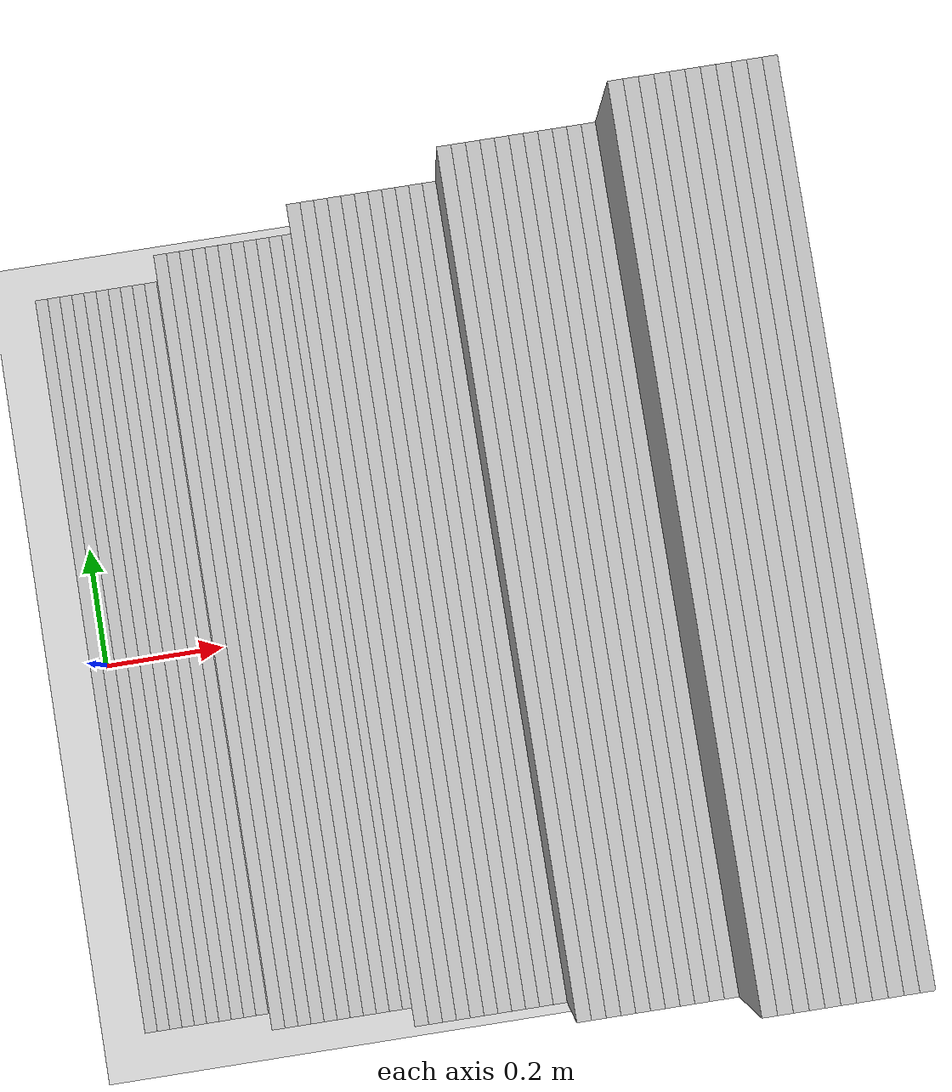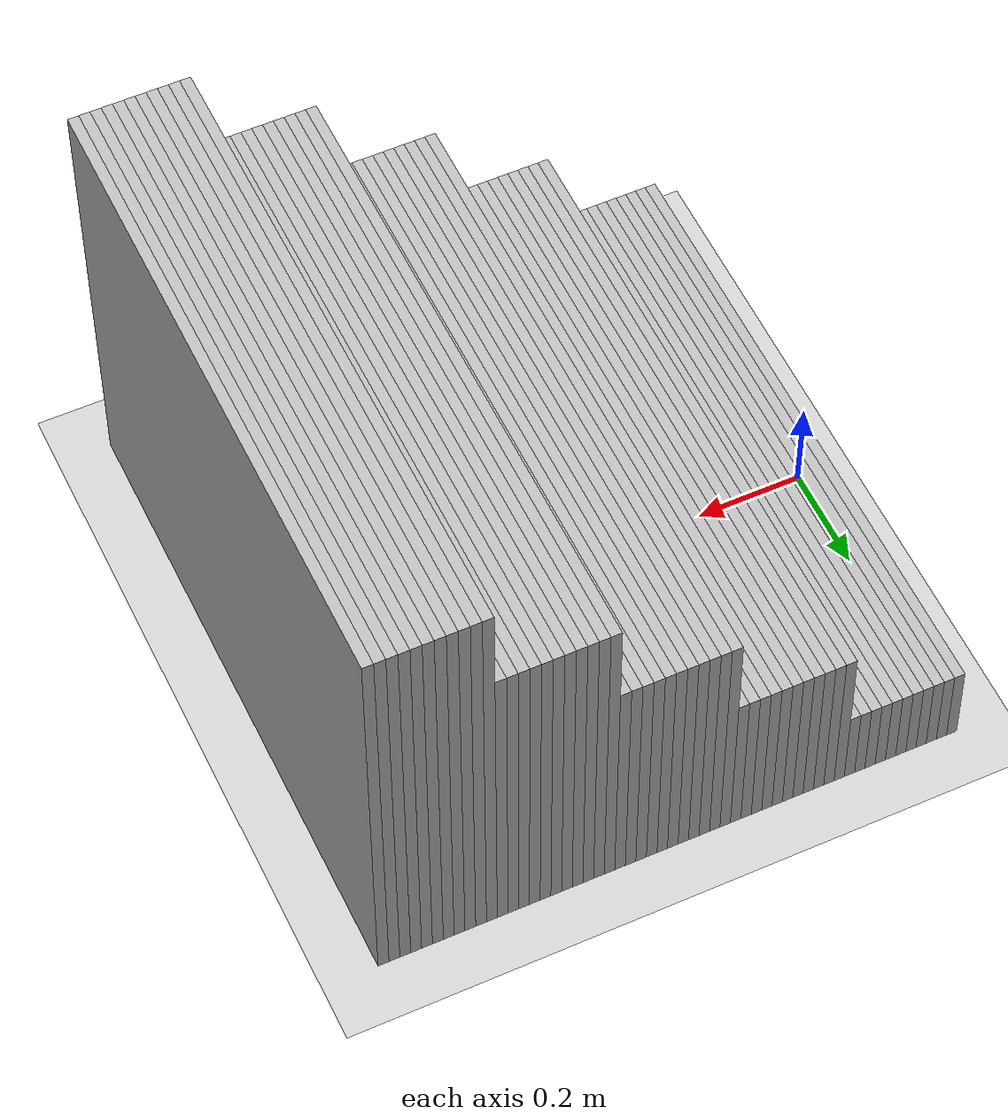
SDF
<?xml version="1.0"?>
<sdf version="1.6">
  <world name="stair_lab">
    <!-- stair_lab_stairs_steep —— 由 stairstudy/fixtures.py 生成（离线候选件，**不被任何在册 launch 引用**）
         场景：踏步深 0.22m 级高 0.18m 共 5 级
         请勿与 worlds/m1_world.world 混用：后者是红线件（各跑 world_before/after.sha 对它取指纹）。 -->
    <include><uri>model://ground_plane</uri></include>
    <include><uri>model://sun</uri></include>
    <model name="stairs_steep">
      <static>1</static>
      <pose>0.000 0.000 0 0 0 0</pose>
        <link name="seg0">
          <pose>0.010 0.000 0.090 0 0 0</pose>
          <collision name="c0"><geometry><box><size>0.02 1.200 0.180</size></box></geometry></collision>
          <visual name="v0"><geometry><box><size>0.02 1.200 0.180</size></box></geometry></visual>
        </link>        <link name="seg1">
          <pose>0.030 0.000 0.090 0 0 0</pose>
          <collision name="c1"><geometry><box><size>0.02 1.200 0.180</size></box></geometry></collision>
          <visual name="v1"><geometry><box><size>0.02 1.200 0.180</size></box></geometry></visual>
        </link>        <link name="seg2">
          <pose>0.050 0.000 0.090 0 0 0</pose>
          <collision name="c2"><geometry><box><size>0.02 1.200 0.180</size></box></geometry></collision>
          <visual name="v2"><geometry><box><size>0.02 1.200 0.180</size></box></geometry></visual>
        </link>        <link name="seg3">
          <pose>0.070 0.000 0.090 0 0 0</pose>
          <collision name="c3"><geometry><box><size>0.02 1.200 0.180</size></box></geometry></collision>
          <visual name="v3"><geometry><box><size>0.02 1.200 0.180</size></box></geometry></visual>
        </link>        <link name="seg4">
          <pose>0.090 0.000 0.090 0 0 0</pose>
          <collision name="c4"><geometry><box><size>0.02 1.200 0.180</size></box></geometry></collision>
          <visual name="v4"><geometry><box><size>0.02 1.200 0.180</size></box></geometry></visual>
        </link>        <link name="seg5">
          <pose>0.110 0.000 0.090 0 0 0</pose>
          <collision name="c5"><geometry><box><size>0.02 1.200 0.180</size></box></geometry></collision>
          <visual name="v5"><geometry><box><size>0.02 1.200 0.180</size></box></geometry></visual>
        </link>        <link name="seg6">
          <pose>0.130 0.000 0.090 0 0 0</pose>
          <collision name="c6"><geometry><box><size>0.02 1.200 0.180</size></box></geometry></collision>
          <visual name="v6"><geometry><box><size>0.02 1.200 0.180</size></box></geometry></visual>
        </link>        <link name="seg7">
          <pose>0.150 0.000 0.090 0 0 0</pose>
          <collision name="c7"><geometry><box><size>0.02 1.200 0.180</size></box></geometry></collision>
          <visual name="v7"><geometry><box><size>0.02 1.200 0.180</size></box></geometry></visual>
        </link>        <link name="seg8">
          <pose>0.170 0.000 0.090 0 0 0</pose>
          <collision name="c8"><geometry><box><size>0.02 1.200 0.180</size></box></geometry></collision>
          <visual name="v8"><geometry><box><size>0.02 1.200 0.180</size></box></geometry></visual>
        </link>        <link name="seg9">
          <pose>0.190 0.000 0.090 0 0 0</pose>
          <collision name="c9"><geometry><box><size>0.02 1.200 0.180</size></box></geometry></collision>
          <visual name="v9"><geometry><box><size>0.02 1.200 0.180</size></box></geometry></visual>
        </link>        <link name="seg10">
          <pose>0.210 0.000 0.090 0 0 0</pose>
          <collision name="c10"><geometry><box><size>0.02 1.200 0.180</size></box></geometry></collision>
          <visual name="v10"><geometry><box><size>0.02 1.200 0.180</size></box></geometry></visual>
        </link>        <link name="seg11">
          <pose>0.230 0.000 0.180 0 0 0</pose>
          <collision name="c11"><geometry><box><size>0.02 1.200 0.360</size></box></geometry></collision>
          <visual name="v11"><geometry><box><size>0.02 1.200 0.360</size></box></geometry></visual>
        </link>        <link name="seg12">
          <pose>0.250 0.000 0.180 0 0 0</pose>
          <collision name="c12"><geometry><box><size>0.02 1.200 0.360</size></box></geometry></collision>
          <visual name="v12"><geometry><box><size>0.02 1.200 0.360</size></box></geometry></visual>
        </link>        <link name="seg13">
          <pose>0.270 0.000 0.180 0 0 0</pose>
          <collision name="c13"><geometry><box><size>0.02 1.200 0.360</size></box></geometry></collision>
          <visual name="v13"><geometry><box><size>0.02 1.200 0.360</size></box></geometry></visual>
        </link>        <link name="seg14">
          <pose>0.290 0.000 0.180 0 0 0</pose>
          <collision name="c14"><geometry><box><size>0.02 1.200 0.360</size></box></geometry></collision>
          <visual name="v14"><geometry><box><size>0.02 1.200 0.360</size></box></geometry></visual>
        </link>        <link name="seg15">
          <pose>0.310 0.000 0.180 0 0 0</pose>
          <collision name="c15"><geometry><box><size>0.02 1.200 0.360</size></box></geometry></collision>
          <visual name="v15"><geometry><box><size>0.02 1.200 0.360</size></box></geometry></visual>
        </link>        <link name="seg16">
          <pose>0.330 0.000 0.180 0 0 0</pose>
          <collision name="c16"><geometry><box><size>0.02 1.200 0.360</size></box></geometry></collision>
          <visual name="v16"><geometry><box><size>0.02 1.200 0.360</size></box></geometry></visual>
        </link>        <link name="seg17">
          <pose>0.350 0.000 0.180 0 0 0</pose>
          <collision name="c17"><geometry><box><size>0.02 1.200 0.360</size></box></geometry></collision>
          <visual name="v17"><geometry><box><size>0.02 1.200 0.360</size></box></geometry></visual>
        </link>        <link name="seg18">
          <pose>0.370 0.000 0.180 0 0 0</pose>
          <collision name="c18"><geometry><box><size>0.02 1.200 0.360</size></box></geometry></collision>
          <visual name="v18"><geometry><box><size>0.02 1.200 0.360</size></box></geometry></visual>
        </link>        <link name="seg19">
          <pose>0.390 0.000 0.180 0 0 0</pose>
          <collision name="c19"><geometry><box><size>0.02 1.200 0.360</size></box></geometry></collision>
          <visual name="v19"><geometry><box><size>0.02 1.200 0.360</size></box></geometry></visual>
        </link>        <link name="seg20">
          <pose>0.410 0.000 0.180 0 0 0</pose>
          <collision name="c20"><geometry><box><size>0.02 1.200 0.360</size></box></geometry></collision>
          <visual name="v20"><geometry><box><size>0.02 1.200 0.360</size></box></geometry></visual>
        </link>        <link name="seg21">
          <pose>0.430 0.000 0.180 0 0 0</pose>
          <collision name="c21"><geometry><box><size>0.02 1.200 0.360</size></box></geometry></collision>
          <visual name="v21"><geometry><box><size>0.02 1.200 0.360</size></box></geometry></visual>
        </link>        <link name="seg22">
          <pose>0.450 0.000 0.270 0 0 0</pose>
          <collision name="c22"><geometry><box><size>0.02 1.200 0.540</size></box></geometry></collision>
          <visual name="v22"><geometry><box><size>0.02 1.200 0.540</size></box></geometry></visual>
        </link>        <link name="seg23">
          <pose>0.470 0.000 0.270 0 0 0</pose>
          <collision name="c23"><geometry><box><size>0.02 1.200 0.540</size></box></geometry></collision>
          <visual name="v23"><geometry><box><size>0.02 1.200 0.540</size></box></geometry></visual>
        </link>        <link name="seg24">
          <pose>0.490 0.000 0.270 0 0 0</pose>
          <collision name="c24"><geometry><box><size>0.02 1.200 0.540</size></box></geometry></collision>
          <visual name="v24"><geometry><box><size>0.02 1.200 0.540</size></box></geometry></visual>
        </link>        <link name="seg25">
          <pose>0.510 0.000 0.270 0 0 0</pose>
          <collision name="c25"><geometry><box><size>0.02 1.200 0.540</size></box></geometry></collision>
          <visual name="v25"><geometry><box><size>0.02 1.200 0.540</size></box></geometry></visual>
        </link>        <link name="seg26">
          <pose>0.530 0.000 0.270 0 0 0</pose>
          <collision name="c26"><geometry><box><size>0.02 1.200 0.540</size></box></geometry></collision>
          <visual name="v26"><geometry><box><size>0.02 1.200 0.540</size></box></geometry></visual>
        </link>        <link name="seg27">
          <pose>0.550 0.000 0.270 0 0 0</pose>
          <collision name="c27"><geometry><box><size>0.02 1.200 0.540</size></box></geometry></collision>
          <visual name="v27"><geometry><box><size>0.02 1.200 0.540</size></box></geometry></visual>
        </link>        <link name="seg28">
          <pose>0.570 0.000 0.270 0 0 0</pose>
          <collision name="c28"><geometry><box><size>0.02 1.200 0.540</size></box></geometry></collision>
          <visual name="v28"><geometry><box><size>0.02 1.200 0.540</size></box></geometry></visual>
        </link>        <link name="seg29">
          <pose>0.590 0.000 0.270 0 0 0</pose>
          <collision name="c29"><geometry><box><size>0.02 1.200 0.540</size></box></geometry></collision>
          <visual name="v29"><geometry><box><size>0.02 1.200 0.540</size></box></geometry></visual>
        </link>        <link name="seg30">
          <pose>0.610 0.000 0.270 0 0 0</pose>
          <collision name="c30"><geometry><box><size>0.02 1.200 0.540</size></box></geometry></collision>
          <visual name="v30"><geometry><box><size>0.02 1.200 0.540</size></box></geometry></visual>
        </link>        <link name="seg31">
          <pose>0.630 0.000 0.270 0 0 0</pose>
          <collision name="c31"><geometry><box><size>0.02 1.200 0.540</size></box></geometry></collision>
          <visual name="v31"><geometry><box><size>0.02 1.200 0.540</size></box></geometry></visual>
        </link>        <link name="seg32">
          <pose>0.650 0.000 0.270 0 0 0</pose>
          <collision name="c32"><geometry><box><size>0.02 1.200 0.540</size></box></geometry></collision>
          <visual name="v32"><geometry><box><size>0.02 1.200 0.540</size></box></geometry></visual>
        </link>        <link name="seg33">
          <pose>0.670 0.000 0.360 0 0 0</pose>
          <collision name="c33"><geometry><box><size>0.02 1.200 0.720</size></box></geometry></collision>
          <visual name="v33"><geometry><box><size>0.02 1.200 0.720</size></box></geometry></visual>
        </link>        <link name="seg34">
          <pose>0.690 0.000 0.360 0 0 0</pose>
          <collision name="c34"><geometry><box><size>0.02 1.200 0.720</size></box></geometry></collision>
          <visual name="v34"><geometry><box><size>0.02 1.200 0.720</size></box></geometry></visual>
        </link>        <link name="seg35">
          <pose>0.710 0.000 0.360 0 0 0</pose>
          <collision name="c35"><geometry><box><size>0.02 1.200 0.720</size></box></geometry></collision>
          <visual name="v35"><geometry><box><size>0.02 1.200 0.720</size></box></geometry></visual>
        </link>        <link name="seg36">
          <pose>0.730 0.000 0.360 0 0 0</pose>
          <collision name="c36"><geometry><box><size>0.02 1.200 0.720</size></box></geometry></collision>
          <visual name="v36"><geometry><box><size>0.02 1.200 0.720</size></box></geometry></visual>
        </link>        <link name="seg37">
          <pose>0.750 0.000 0.360 0 0 0</pose>
          <collision name="c37"><geometry><box><size>0.02 1.200 0.720</size></box></geometry></collision>
          <visual name="v37"><geometry><box><size>0.02 1.200 0.720</size></box></geometry></visual>
        </link>        <link name="seg38">
          <pose>0.770 0.000 0.360 0 0 0</pose>
          <collision name="c38"><geometry><box><size>0.02 1.200 0.720</size></box></geometry></collision>
          <visual name="v38"><geometry><box><size>0.02 1.200 0.720</size></box></geometry></visual>
        </link>        <link name="seg39">
          <pose>0.790 0.000 0.360 0 0 0</pose>
          <collision name="c39"><geometry><box><size>0.02 1.200 0.720</size></box></geometry></collision>
          <visual name="v39"><geometry><box><size>0.02 1.200 0.720</size></box></geometry></visual>
        </link>        <link name="seg40">
          <pose>0.810 0.000 0.360 0 0 0</pose>
          <collision name="c40"><geometry><box><size>0.02 1.200 0.720</size></box></geometry></collision>
          <visual name="v40"><geometry><box><size>0.02 1.200 0.720</size></box></geometry></visual>
        </link>        <link name="seg41">
          <pose>0.830 0.000 0.360 0 0 0</pose>
          <collision name="c41"><geometry><box><size>0.02 1.200 0.720</size></box></geometry></collision>
          <visual name="v41"><geometry><box><size>0.02 1.200 0.720</size></box></geometry></visual>
        </link>        <link name="seg42">
          <pose>0.850 0.000 0.360 0 0 0</pose>
          <collision name="c42"><geometry><box><size>0.02 1.200 0.720</size></box></geometry></collision>
          <visual name="v42"><geometry><box><size>0.02 1.200 0.720</size></box></geometry></visual>
        </link>        <link name="seg43">
          <pose>0.870 0.000 0.360 0 0 0</pose>
          <collision name="c43"><geometry><box><size>0.02 1.200 0.720</size></box></geometry></collision>
          <visual name="v43"><geometry><box><size>0.02 1.200 0.720</size></box></geometry></visual>
        </link>        <link name="seg44">
          <pose>0.890 0.000 0.450 0 0 0</pose>
          <collision name="c44"><geometry><box><size>0.02 1.200 0.900</size></box></geometry></collision>
          <visual name="v44"><geometry><box><size>0.02 1.200 0.900</size></box></geometry></visual>
        </link>        <link name="seg45">
          <pose>0.910 0.000 0.450 0 0 0</pose>
          <collision name="c45"><geometry><box><size>0.02 1.200 0.900</size></box></geometry></collision>
          <visual name="v45"><geometry><box><size>0.02 1.200 0.900</size></box></geometry></visual>
        </link>        <link name="seg46">
          <pose>0.930 0.000 0.450 0 0 0</pose>
          <collision name="c46"><geometry><box><size>0.02 1.200 0.900</size></box></geometry></collision>
          <visual name="v46"><geometry><box><size>0.02 1.200 0.900</size></box></geometry></visual>
        </link>        <link name="seg47">
          <pose>0.950 0.000 0.450 0 0 0</pose>
          <collision name="c47"><geometry><box><size>0.02 1.200 0.900</size></box></geometry></collision>
          <visual name="v47"><geometry><box><size>0.02 1.200 0.900</size></box></geometry></visual>
        </link>        <link name="seg48">
          <pose>0.970 0.000 0.450 0 0 0</pose>
          <collision name="c48"><geometry><box><size>0.02 1.200 0.900</size></box></geometry></collision>
          <visual name="v48"><geometry><box><size>0.02 1.200 0.900</size></box></geometry></visual>
        </link>        <link name="seg49">
          <pose>0.990 0.000 0.450 0 0 0</pose>
          <collision name="c49"><geometry><box><size>0.02 1.200 0.900</size></box></geometry></collision>
          <visual name="v49"><geometry><box><size>0.02 1.200 0.900</size></box></geometry></visual>
        </link>        <link name="seg50">
          <pose>1.010 0.000 0.450 0 0 0</pose>
          <collision name="c50"><geometry><box><size>0.02 1.200 0.900</size></box></geometry></collision>
          <visual name="v50"><geometry><box><size>0.02 1.200 0.900</size></box></geometry></visual>
        </link>        <link name="seg51">
          <pose>1.030 0.000 0.450 0 0 0</pose>
          <collision name="c51"><geometry><box><size>0.02 1.200 0.900</size></box></geometry></collision>
          <visual name="v51"><geometry><box><size>0.02 1.200 0.900</size></box></geometry></visual>
        </link>        <link name="seg52">
          <pose>1.050 0.000 0.450 0 0 0</pose>
          <collision name="c52"><geometry><box><size>0.02 1.200 0.900</size></box></geometry></collision>
          <visual name="v52"><geometry><box><size>0.02 1.200 0.900</size></box></geometry></visual>
        </link>        <link name="seg53">
          <pose>1.070 0.000 0.450 0 0 0</pose>
          <collision name="c53"><geometry><box><size>0.02 1.200 0.900</size></box></geometry></collision>
          <visual name="v53"><geometry><box><size>0.02 1.200 0.900</size></box></geometry></visual>
        </link>        <link name="seg54">
          <pose>1.090 0.000 0.450 0 0 0</pose>
          <collision name="c54"><geometry><box><size>0.02 1.200 0.900</size></box></geometry></collision>
          <visual name="v54"><geometry><box><size>0.02 1.200 0.900</size></box></geometry></visual>
        </link>
    </model>

  </world>
</sdf>
